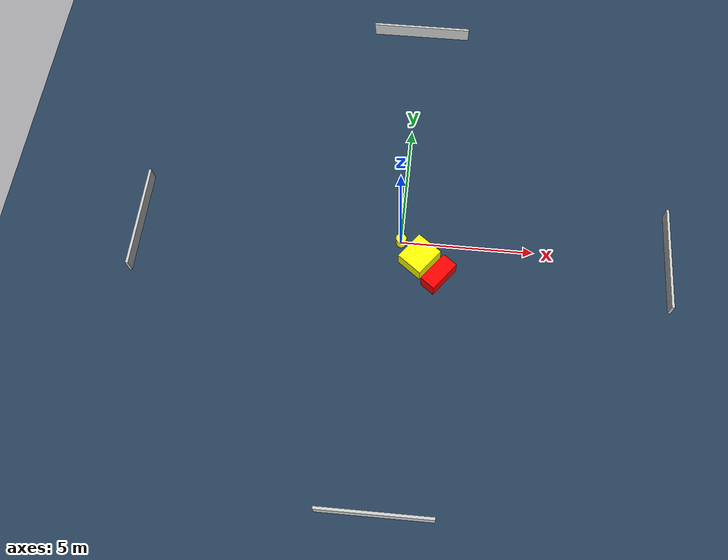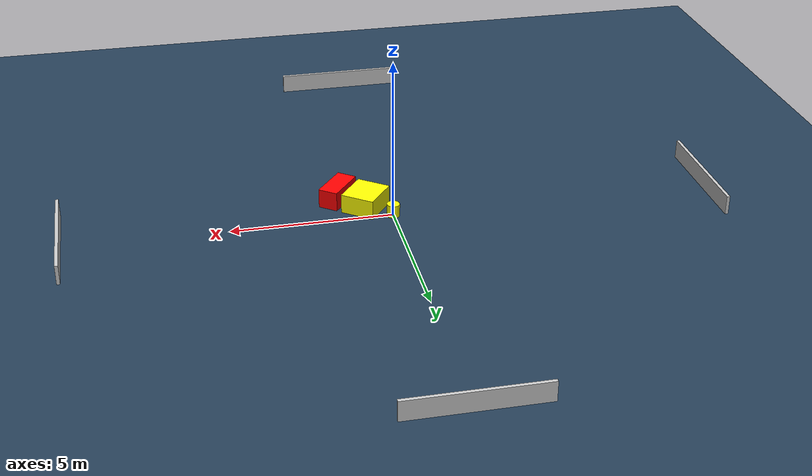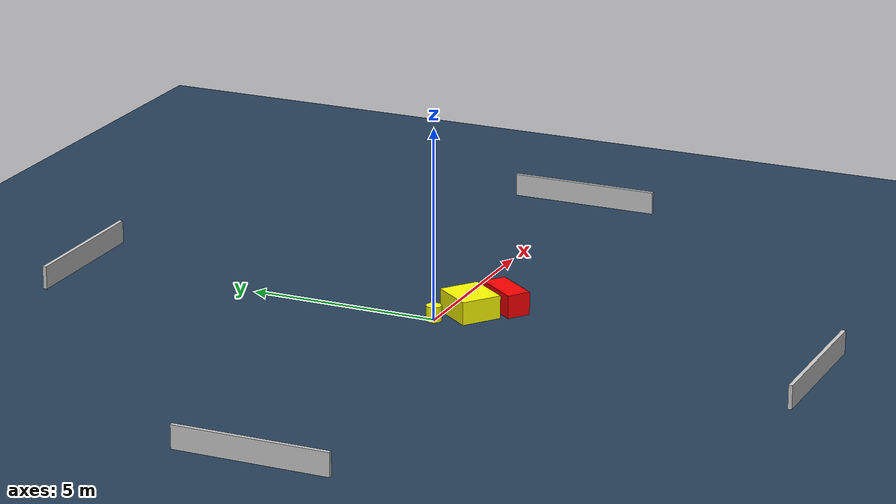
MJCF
<?xml version="1.0" ?>
<mujoco model="generated_environment">
  <option timestep="0.01" integrator="RK4" cone="elliptic"/>
  <default>
    <geom density="1"/>
  </default>
  <asset>
    <texture builtin="gradient" height="3072" name="skybox" rgb1="0.3 0.5 0.7" rgb2="0 0 0" type="skybox" width="512"/>
    <texture builtin="checker" height="300" name="groundplane" rgb1="0.2 0.3 0.4" rgb2="0.1 0.2 0.3" type="2d" width="300"/>
    <material name="groundplane" reflectance="0.2" texrepeat="5 5" texture="groundplane"/>
  </asset>
  <worldbody>
    <light dir="0 0 -1" directional="true" pos="0 0 1.5"/>
    <geom condim="3" friction="0.5 0.005 0.001" material="groundplane" name="floor" pos="0 0 0" size="0 0 0.05" type="plane"/>
    <body name="walls">
      <geom name="wall_1" condim="4" pos="-10.0 0.0 0.3" rgba="0.800000011920929 0.800000011920929 0.800000011920929 1.0" size="0.05 2.0 0.3" type="box"/>
      <geom name="wall_2" condim="4" pos="10.0 0.0 0.3" rgba="0.800000011920929 0.800000011920929 0.800000011920929 1.0" size="0.05 2.0 0.3" type="box"/>
      <geom name="wall_3" condim="4" pos="0.0 -10.0 0.3" rgba="0.800000011920929 0.800000011920929 0.800000011920929 1.0" size="2.0 0.05 0.3" type="box"/>
      <geom name="wall_4" condim="4" pos="0.0 10.0 0.3" rgba="0.800000011920929 0.800000011920929 0.800000011920929 1.0" size="2.0 0.05 0.3" type="box"/>
    </body>
    <body name="robot">
      <joint name="joint_x" type="slide" pos="0 0 0" axis="1 0 0"/>
      <joint name="joint_y" type="slide" pos="0 0 0" axis="0 1 0"/>
      <geom name="robot" type="cylinder" pos="0.0 0.0 0.2" size="0.2 0.2 0.0" mass="5.0" friction="1.0 0.005 0.0001" condim="4" rgba="1.0 1.0 0.0 1.0"/>
    </body>
    <body name="obstacle_1_movable">
      <geom name="obstacle_1_movable" condim="4" pos="0.7374137634307708 -0.6615156719252488 0.3" euler="0 0 232.85026240626038" friction="0.0 0.005 0.001" rgba="1.0 1.0 0.0 1.0" size="0.5911553565511489 0.534808491786707 0.3" type="box" mass="0.1"/>
      <joint type="free"/>
    </body>
    <body name="obstacle_2_static">
      <geom name="obstacle_2_static" condim="4" pos="1.4964779868811875 -1.317993920633194 0.3" euler="0 0 232.4787391941364" friction="0.0 0.005 0.001" rgba="1.0 0.0 0.0 1.0" size="0.6431019578792208 0.3099062051750863 0.3" type="box"/>
    </body>
  </worldbody>
  <actuator>
    <motor name="actuator_x" joint="joint_x" gear="1" ctrlrange="-1 1"/>
    <motor name="actuator_y" joint="joint_y" gear="1" ctrlrange="-1 1"/>
  </actuator>
</mujoco>
